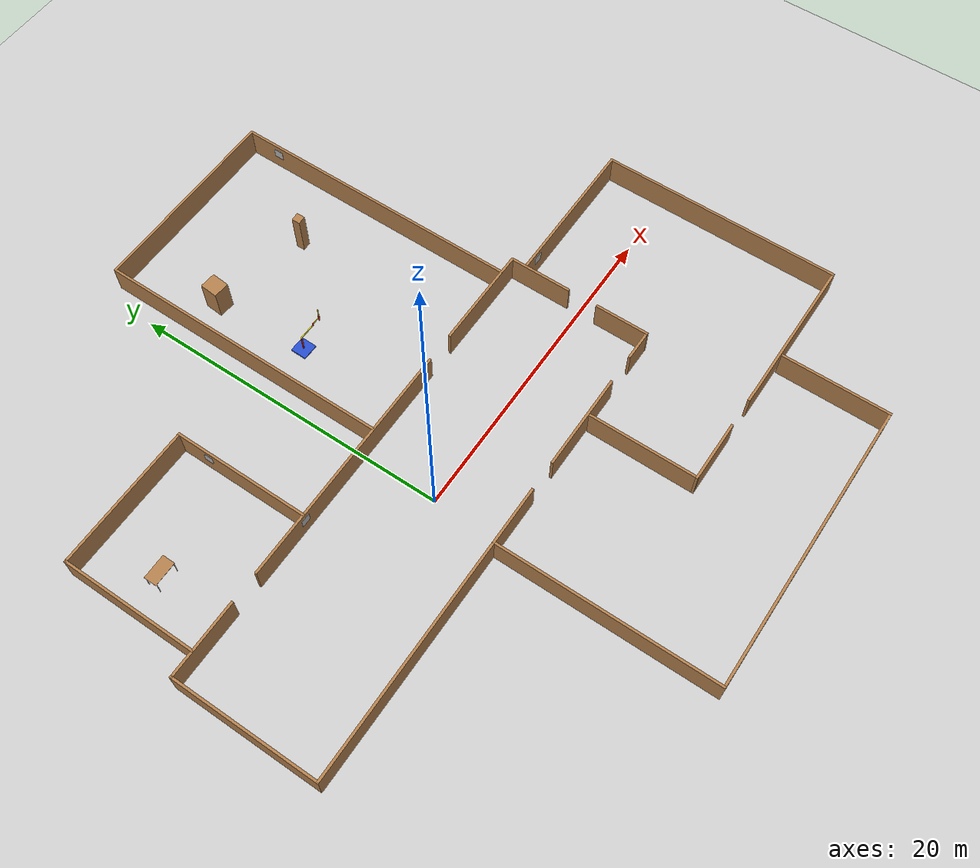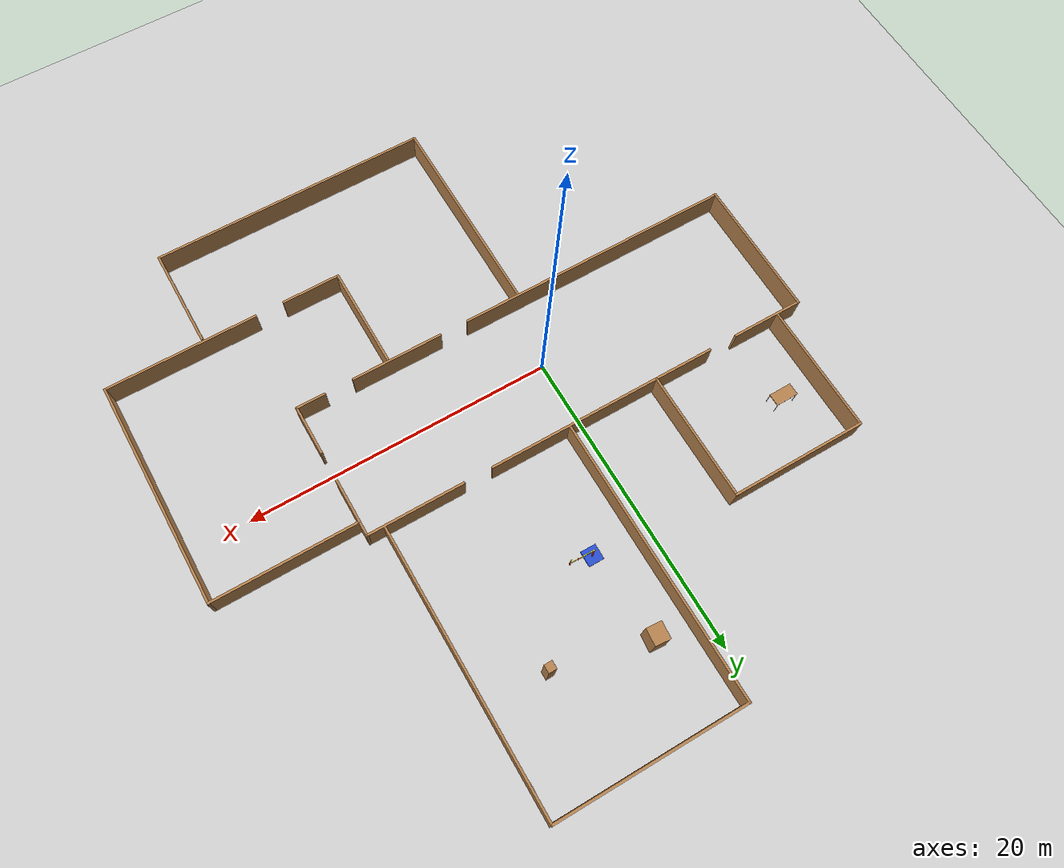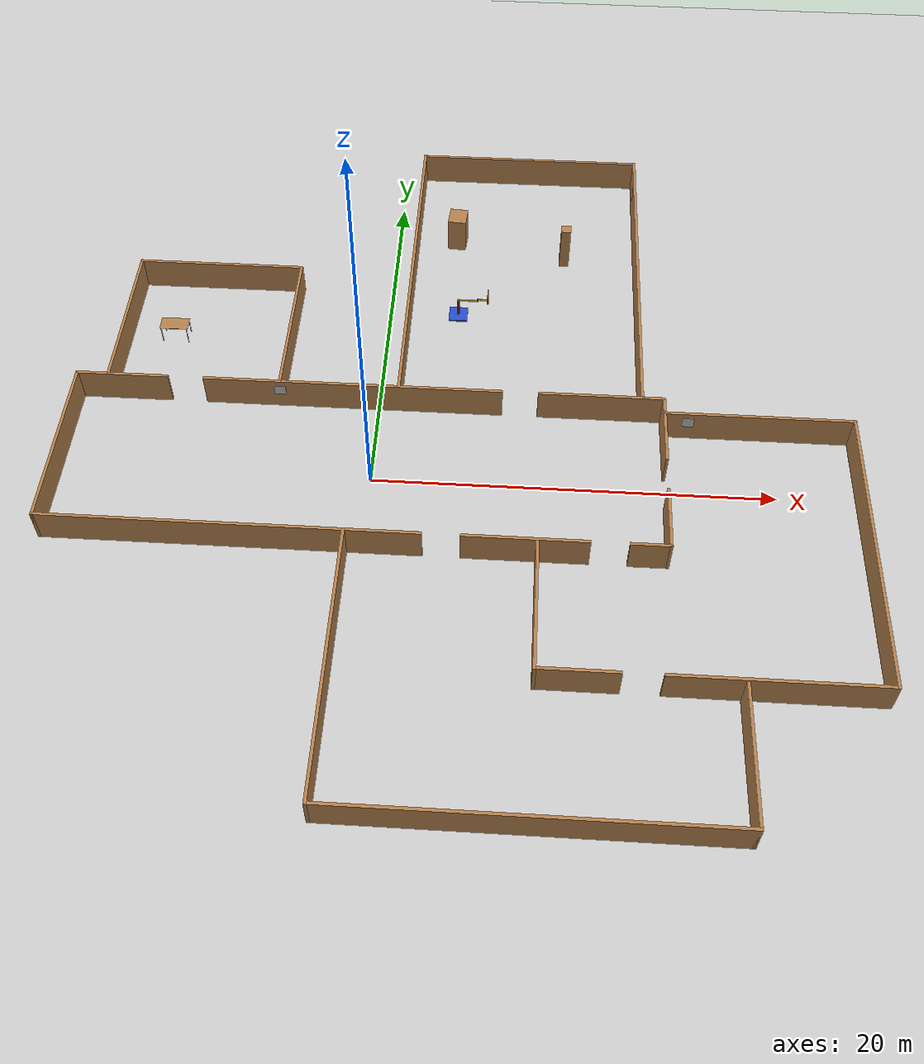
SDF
<sdf version="1.7">
 <world name="default">
  <model name="ground_plane">
   <static>1</static>
   <link name="link">
    <collision name="collision">
     <geometry><plane><normal>0 0 1</normal><size>25 25</size></plane></geometry>
     <surface><friction><ode><mu>100</mu><mu2>50</mu2></ode></friction></surface>
    </collision>
    <visual name="visual">
     <cast_shadows>0</cast_shadows>
     <geometry><plane><normal>0 0 1</normal><size>25 25</size></plane></geometry>
     <material>
      <script><uri>file://media/materials/scripts/gazebo.material</uri><name>Gazebo/Grey</name></script>
     </material>
    </visual>
   </link>
   <link name="startflag">
    <pose>0 0 0.115 0 -0 0</pose>
    <inertial>
     <mass>0.39</mass>
     <inertia><ixx>0.00058</ixx><ixy>0</ixy><ixz>0</ixz><iyy>0.00058</iyy><iyz>0</iyz><izz>0.00019</izz></inertia>
    </inertial>
    <collision name="collision"><geometry><box><size>1 1 0.01</size></box></geometry></collision>
    <visual name="visual">
     <geometry><box><size>1 1 0.01</size></box></geometry>
     <material>
      <script>
       <uri>model://apriltag/materials/scripts</uri>
       <uri>model://apriltag/materials/textures</uri>
       <name>startflag/Diffuse</name>
      </script>
     </material>
    </visual>
   </link>
  </model>
  <model name="unit_box_0_clone_0">
   <pose>9.39079 16.1994 1.29125 -1e-06 -1e-06 0.007202</pose>
   <link name="link">
    <inertial>
     <mass>1</mass>
     <inertia>
      <ixx>0.166667</ixx>
      <ixy>0</ixy>
      <ixz>0</ixz>
      <iyy>0.166667</iyy>
      <iyz>0</iyz>
      <izz>0.166667</izz>
     </inertia>
    </inertial>
    <collision name="collision"><geometry><box><size>0.52404 0.528614 2.5825</size></box></geometry></collision>
    <visual name="visual">
     <geometry><box><size>0.52404 0.528614 2.5825</size></box></geometry>
     <material>
      <script><uri>file://media/materials/scripts/gazebo.material</uri><name>Gazebo/Wood</name></script>
     </material>
    </visual>
   </link>
   <static>0</static>
  </model>
  <model name="static_apriltag_0">
   <link name="link">
    <pose>0 0 0 0 1.57 0</pose>
    <inertial>
     <mass>0.39</mass>
     <inertia><ixx>0.00058</ixx><ixy>0</ixy><ixz>0</ixz><iyy>0.00058</iyy><iyz>0</iyz><izz>0.00019</izz></inertia>
    </inertial>
    <collision name="collision"><geometry><box><size>0.6 0.6 0.01</size></box></geometry></collision>
    <visual name="visual">
     <geometry><box><size>0.6 0.6 0.01</size></box></geometry>
     <material>
      <script>
       <uri>model://apriltag/materials/scripts</uri>
       <uri>model://apriltag/materials/textures</uri>
       <name>apriltag/Diffuse0</name>
      </script>
     </material>
    </visual>
    <gravity>0</gravity>
   </link>
   <pose>-5.15533 11.0818 1.2 0 -0 0</pose>
   <static>0</static>
   <pose>1.90787 0.108649 0 0 -0 0</pose>
  </model>
  <model name="static_apriltag_1">
   <link name="link">
    <pose>0 0 0 0 1.57 0</pose>
    <inertial>
     <mass>0.39</mass>
     <inertia><ixx>0.00058</ixx><ixy>0</ixy><ixz>0</ixz><iyy>0.00058</iyy><iyz>0</iyz><izz>0.00019</izz></inertia>
    </inertial>
    <collision name="collision"><geometry><box><size>0.6 0.6 0.01</size></box></geometry></collision>
    <visual name="visual">
     <geometry><box><size>0.6 0.6 0.01</size></box></geometry>
     <material>
      <script>
       <uri>model://apriltag/materials/scripts</uri>
       <uri>model://apriltag/materials/textures</uri>
       <name>apriltag/Diffuse1</name>
      </script>
     </material>
    </visual>
    <gravity>0</gravity>
   </link>
   <pose>13.2653 20.9376 1.2 0 -0 0</pose>
   <static>0</static>
   <pose>1.36256 0.459264 0 0 -0 0</pose>
  </model>
  <model name="static_apriltag_3">
   <link name="link">
    <pose>0 0 0 -1.57 1.57 -0</pose>
    <inertial>
     <mass>0.39</mass>
     <inertia><ixx>0.00058</ixx><ixy>0</ixy><ixz>0</ixz><iyy>0.00058</iyy><iyz>0</iyz><izz>0.00019</izz></inertia>
    </inertial>
    <collision name="collision"><geometry><box><size>0.6 0.6 0.01</size></box></geometry></collision>
    <visual name="visual">
     <geometry><box><size>0.6 0.6 0.01</size></box></geometry>
     <material>
      <script>
       <uri>model://apriltag/materials/scripts</uri>
       <uri>model://apriltag/materials/textures</uri>
       <name>apriltag/Diffuse3</name>
      </script>
     </material>
    </visual>
    <gravity>0</gravity>
   </link>
   <pose>-5.07788 4.5791 1.2 0 -0 0</pose>
   <static>0</static>
   <pose>3.65849 3.02317 0 0 -0 0</pose>
  </model>
  <model name="static_apriltag_5">
   <link name="link">
    <pose>0 0 0 -1.57 1.57 -0</pose>
    <inertial>
     <mass>0.39</mass>
     <inertia><ixx>0.00058</ixx><ixy>0</ixy><ixz>0</ixz><iyy>0.00058</iyy><iyz>0</iyz><izz>0.00019</izz></inertia>
    </inertial>
    <collision name="collision"><geometry><box><size>0.6 0.6 0.01</size></box></geometry></collision>
    <visual name="visual">
     <geometry><box><size>0.6 0.6 0.01</size></box></geometry>
     <material>
      <script>
       <uri>model://apriltag/materials/scripts</uri>
       <uri>model://apriltag/materials/textures</uri>
       <name>apriltag/Diffuse5</name>
      </script>
     </material>
    </visual>
    <gravity>0</gravity>
   </link>
   <pose>15.6897 3.67103 1.2 0 -0 0</pose>
   <static>0</static>
   <pose>5.04082 3.71574 0 0 -0 0</pose>
  </model>
  <model name="simple_arm">
   <link name="arm_base">
    <inertial>
     <pose>0 0 0.00099 0 -0 0</pose>
     <inertia><ixx>1.11</ixx><ixy>0</ixy><ixz>0</ixz><iyy>100.11</iyy><iyz>0</iyz><izz>1.01</izz></inertia>
     <mass>101</mass>
    </inertial>
    <collision name="arm_base_geom">
     <pose>0 0 0.05 0 -0 0</pose>
     <geometry><box><size>1 1 0.1</size></box></geometry>
    </collision>
    <visual name="arm_base_geom_visual">
     <pose>0 0 0.05 0 -0 0</pose>
     <geometry><box><size>1 1 0.1</size></box></geometry>
     <material>
      <script><uri>file://media/materials/scripts/gazebo.material</uri><name>Gazebo/Blue</name></script>
     </material>
    </visual>
    <collision name="arm_base_geom_arm_trunk">
     <pose>0 0 0.6 0 -0 0</pose>
     <geometry><cylinder><radius>0.05</radius><length>1</length></cylinder></geometry>
    </collision>
    <visual name="arm_base_geom_arm_trunk_visual">
     <pose>0 0 0.6 0 -0 0</pose>
     <geometry><cylinder><radius>0.05</radius><length>1</length></cylinder></geometry>
     <material>
      <script><uri>file://media/materials/scripts/gazebo.material</uri><name>Gazebo/Red</name></script>
     </material>
    </visual>
   </link>
   <link name="arm_shoulder_pan">
    <pose>0 0 1.1 0 -0 0</pose>
    <inertial>
     <pose>0.045455 0 0 0 -0 0</pose>
     <inertia><ixx>0.011</ixx><ixy>0</ixy><ixz>0</ixz><iyy>0.0225</iyy><iyz>0</iyz><izz>0.0135</izz></inertia>
     <mass>1.1</mass>
    </inertial>
    <collision name="arm_shoulder_pan_geom">
     <pose>0 0 0.05 0 -0 0</pose>
     <geometry><cylinder><radius>0.05</radius><length>0.1</length></cylinder></geometry>
    </collision>
    <visual name="arm_shoulder_pan_geom_visual">
     <pose>0 0 0.05 0 -0 0</pose>
     <geometry><cylinder><radius>0.05</radius><length>0.1</length></cylinder></geometry>
     <material>
      <script><uri>file://media/materials/scripts/gazebo.material</uri><name>Gazebo/Yellow</name></script>
     </material>
    </visual>
    <collision name="arm_shoulder_pan_geom_arm_shoulder">
     <pose>0.55 0 0.05 0 -0 0</pose>
     <geometry><box><size>1 0.05 0.1</size></box></geometry>
    </collision>
    <visual name="arm_shoulder_pan_geom_arm_shoulder_visual">
     <pose>0.55 0 0.05 0 -0 0</pose>
     <geometry><box><size>1 0.05 0.1</size></box></geometry>
     <material>
      <script><uri>file://media/materials/scripts/gazebo.material</uri><name>Gazebo/Yellow</name></script>
     </material>
    </visual>
   </link>
   <link name="arm_elbow_pan">
    <pose>1.05 0 1.1 0 -0 0</pose>
    <inertial>
     <pose>0.0875 0 0.083333 0 -0 0</pose>
     <inertia>
      <ixx>0.031</ixx>
      <ixy>0</ixy>
      <ixz>0.005</ixz>
      <iyy>0.07275</iyy>
      <iyz>0</iyz>
      <izz>0.04475</izz>
     </inertia>
     <mass>1.2</mass>
    </inertial>
    <collision name="arm_elbow_pan_geom">
     <pose>0 0 0.1 0 -0 0</pose>
     <geometry><cylinder><radius>0.05</radius><length>0.2</length></cylinder></geometry>
    </collision>
    <visual name="arm_elbow_pan_geom_visual">
     <pose>0 0 0.1 0 -0 0</pose>
     <geometry><cylinder><radius>0.05</radius><length>0.2</length></cylinder></geometry>
     <material>
      <script><uri>file://media/materials/scripts/gazebo.material</uri><name>Gazebo/Red</name></script>
     </material>
    </visual>
    <collision name="arm_elbow_pan_geom_arm_elbow">
     <pose>0.3 0 0.15 0 -0 0</pose>
     <geometry><box><size>0.5 0.03 0.1</size></box></geometry>
    </collision>
    <visual name="arm_elbow_pan_geom_arm_elbow_visual">
     <pose>0.3 0 0.15 0 -0 0</pose>
     <geometry><box><size>0.5 0.03 0.1</size></box></geometry>
     <material>
      <script><uri>file://media/materials/scripts/gazebo.material</uri><name>Gazebo/Yellow</name></script>
     </material>
    </visual>
    <collision name="arm_elbow_pan_geom_arm_wrist">
     <pose>0.55 0 0.15 0 -0 0</pose>
     <geometry><cylinder><radius>0.05</radius><length>0.3</length></cylinder></geometry>
    </collision>
    <visual name="arm_elbow_pan_geom_arm_wrist_visual">
     <pose>0.55 0 0.15 0 -0 0</pose>
     <geometry><cylinder><radius>0.05</radius><length>0.3</length></cylinder></geometry>
     <material>
      <script><uri>file://media/materials/scripts/gazebo.material</uri><name>Gazebo/Red</name></script>
     </material>
    </visual>
   </link>
   <link name="arm_wrist_lift">
    <pose>1.6 0 1.05 0 -0 0</pose>
    <inertial>
     <inertia><ixx>0.01</ixx><ixy>0</ixy><ixz>0</ixz><iyy>0.01</iyy><iyz>0</iyz><izz>0.001</izz></inertia>
     <mass>0.1</mass>
    </inertial>
    <collision name="arm_wrist_lift_geom">
     <pose>0 0 0.5 0 -0 0</pose>
     <geometry><cylinder><radius>0.03</radius><length>1</length></cylinder></geometry>
    </collision>
    <visual name="arm_wrist_lift_geom_visual">
     <pose>0 0 0.5 0 -0 0</pose>
     <geometry><cylinder><radius>0.03</radius><length>1</length></cylinder></geometry>
     <material>
      <script><uri>file://media/materials/scripts/gazebo.material</uri><name>Gazebo/Yellow</name></script>
     </material>
    </visual>
   </link>
   <link name="arm_wrist_roll">
    <pose>1.6 0 1 0 -0 0</pose>
    <inertial>
     <inertia><ixx>0.01</ixx><ixy>0</ixy><ixz>0</ixz><iyy>0.01</iyy><iyz>0</iyz><izz>0.001</izz></inertia>
     <mass>0.1</mass>
    </inertial>
    <collision name="arm_wrist_roll_geom">
     <pose>0 0 0.025 0 -0 0</pose>
     <geometry><cylinder><radius>0.05</radius><length>0.05</length></cylinder></geometry>
    </collision>
    <visual name="arm_wrist_roll_geom_visual">
     <pose>0 0 0.025 0 -0 0</pose>
     <geometry><cylinder><radius>0.05</radius><length>0.05</length></cylinder></geometry>
     <material>
      <script><uri>file://media/materials/scripts/gazebo.material</uri><name>Gazebo/Red</name></script>
     </material>
    </visual>
   </link>
   <joint name="arm_shoulder_pan_joint" type="revolute">
    <parent>arm_base</parent>
    <child>arm_shoulder_pan</child>
    <axis>
     <dynamics>
      <damping>1</damping>
      <friction>0</friction>
      <spring_reference>0</spring_reference>
      <spring_stiffness>0</spring_stiffness>
     </dynamics>
     <xyz expressed_in="__model__">0 0 1</xyz>
     <limit><lower>-1e+16</lower><upper>1e+16</upper></limit>
    </axis>
   </joint>
   <joint name="arm_elbow_pan_joint" type="revolute">
    <parent>arm_shoulder_pan</parent>
    <child>arm_elbow_pan</child>
    <axis>
     <dynamics>
      <damping>1</damping>
      <friction>0</friction>
      <spring_reference>0</spring_reference>
      <spring_stiffness>0</spring_stiffness>
     </dynamics>
     <xyz expressed_in="__model__">0 0 1</xyz>
     <limit><lower>-1e+16</lower><upper>1e+16</upper></limit>
    </axis>
   </joint>
   <joint name="arm_wrist_lift_joint" type="prismatic">
    <parent>arm_elbow_pan</parent>
    <child>arm_wrist_lift</child>
    <axis>
     <dynamics>
      <damping>1</damping>
      <friction>0</friction>
      <spring_reference>0</spring_reference>
      <spring_stiffness>0</spring_stiffness>
     </dynamics>
     <limit><lower>-0.8</lower><upper>0.1</upper></limit>
     <xyz expressed_in="__model__">0 0 1</xyz>
    </axis>
   </joint>
   <joint name="arm_wrist_roll_joint" type="revolute">
    <parent>arm_wrist_lift</parent>
    <child>arm_wrist_roll</child>
    <axis>
     <dynamics>
      <damping>1</damping>
      <friction>0</friction>
      <spring_reference>0</spring_reference>
      <spring_stiffness>0</spring_stiffness>
     </dynamics>
     <limit><lower>-2.99999</lower><upper>2.99999</upper></limit>
     <xyz expressed_in="__model__">0 0 1</xyz>
    </axis>
   </joint>
   <pose>3.65987 11.7055 -0 0 -0 -0.011111</pose>
  </model>
  <model name="house4">
   <pose>4.1908 2.60197 0 0 -0 0</pose>
   <link name="Wall_0">
    <collision name="Wall_0_Collision">
     <geometry><box><size>9.15 0.15 1.8</size></box></geometry>
     <pose>0 0 0.9 0 -0 0</pose>
    </collision>
    <visual name="Wall_0_Visual">
     <pose>0 0 0.9 0 -0 0</pose>
     <geometry><box><size>9.15 0.15 1.8</size></box></geometry>
     <material>
      <script><uri>file://media/materials/scripts/gazebo.material</uri><name>Gazebo/Wood</name></script>
      <ambient>1 1 1 1</ambient>
     </material>
     <meta><layer>0</layer></meta>
    </visual>
    <pose>-19.71 -2.4279 0 0 -0 -1.5708</pose>
   </link>
   <link name="Wall_1">
    <pose>-4.71 -6.9279 0 0 -0 0</pose>
    <visual name="Wall_1_Visual_0">
     <pose>-5.83035 0 0.9 0 -0 0</pose>
     <geometry><box><size>18.4893 0.15 1.8</size></box></geometry>
     <material>
      <script><uri>file://media/materials/scripts/gazebo.material</uri><name>Gazebo/Wood</name></script>
      <ambient>1 1 1 1</ambient>
     </material>
     <meta><layer>0</layer></meta>
    </visual>
    <collision name="Wall_1_Collision_0">
     <geometry><box><size>18.4893 0.15 1.8</size></box></geometry>
     <pose>-5.83035 0 0.9 0 -0 0</pose>
    </collision>
    <visual name="Wall_1_Visual_1">
     <pose>8.25278 0 0.9 0 -0 0</pose>
     <geometry><box><size>6.07697 0.15 1.8</size></box></geometry>
     <material>
      <script><uri>file://media/materials/scripts/gazebo.material</uri><name>Gazebo/Wood</name></script>
      <ambient>1 1 1 1</ambient>
     </material>
     <meta><layer>0</layer></meta>
    </visual>
    <collision name="Wall_1_Collision_1">
     <geometry><box><size>6.07697 0.15 1.8</size></box></geometry>
     <pose>8.25278 0 0.9 0 -0 0</pose>
    </collision>
    <visual name="Wall_1_Visual_2">
     <pose>14.0831 0 0.9 0 -0 0</pose>
     <geometry><box><size>1.98374 0.15 1.8</size></box></geometry>
     <material>
      <script><uri>file://media/materials/scripts/gazebo.material</uri><name>Gazebo/Wood</name></script>
      <ambient>1 1 1 1</ambient>
     </material>
     <meta><layer>0</layer></meta>
    </visual>
    <collision name="Wall_1_Collision_2">
     <geometry><box><size>1.98374 0.15 1.8</size></box></geometry>
     <pose>14.0831 0 0.9 0 -0 0</pose>
    </collision>
   </link>
   <link name="Wall_11">
    <collision name="Wall_11_Collision">
     <geometry><box><size>18.5 0.15 1.8</size></box></geometry>
     <pose>0 0 0.9 0 -0 0</pose>
    </collision>
    <visual name="Wall_11_Visual">
     <pose>0 0 0.9 0 -0 0</pose>
     <geometry><box><size>18.5 0.15 1.8</size></box></geometry>
     <material>
      <script><uri>file://media/materials/scripts/gazebo.material</uri><name>Gazebo/Wood</name></script>
      <ambient>1 1 1 1</ambient>
     </material>
     <meta><layer>0</layer></meta>
    </visual>
    <pose>-3.167 11.2531 0 0 -0 1.5708</pose>
   </link>
   <link name="Wall_12">
    <collision name="Wall_12_Collision">
     <geometry><box><size>12.5 0.15 1.8</size></box></geometry>
     <pose>0 0 0.9 0 -0 0</pose>
    </collision>
    <visual name="Wall_12_Visual">
     <pose>0 0 0.9 0 -0 0</pose>
     <geometry><box><size>12.5 0.15 1.8</size></box></geometry>
     <material>
      <script><uri>file://media/materials/scripts/gazebo.material</uri><name>Gazebo/Wood</name></script>
      <ambient>1 1 1 1</ambient>
     </material>
     <meta><layer>0</layer></meta>
    </visual>
    <pose>3.008 20.4281 0 0 -0 0</pose>
   </link>
   <link name="Wall_13">
    <collision name="Wall_13_Collision">
     <geometry><box><size>18.5 0.15 1.8</size></box></geometry>
     <pose>0 0 0.9 0 -0 0</pose>
    </collision>
    <visual name="Wall_13_Visual">
     <pose>0 0 0.9 0 -0 0</pose>
     <geometry><box><size>18.5 0.15 1.8</size></box></geometry>
     <material>
      <script><uri>file://media/materials/scripts/gazebo.material</uri><name>Gazebo/Wood</name></script>
      <ambient>1 1 1 1</ambient>
     </material>
     <meta><layer>0</layer></meta>
    </visual>
    <pose>9.183 11.2531 0 0 -0 -1.5708</pose>
   </link>
   <link name="Wall_15">
    <collision name="Wall_15_Collision">
     <geometry><box><size>9.5 0.15 1.8</size></box></geometry>
     <pose>0 0 0.9 0 -0 0</pose>
    </collision>
    <visual name="Wall_15_Visual">
     <pose>0 0 0.9 0 -0 0</pose>
     <geometry><box><size>9.5 0.15 1.8</size></box></geometry>
     <material>
      <script><uri>file://media/materials/scripts/gazebo.material</uri><name>Gazebo/Wood</name></script>
      <ambient>1 1 1 1</ambient>
     </material>
     <meta><layer>0</layer></meta>
    </visual>
    <pose>15.035 1.1501 0 0 -0 0</pose>
   </link>
   <link name="Wall_18">
    <collision name="Wall_18_Collision">
     <geometry><box><size>15 0.15 1.8</size></box></geometry>
     <pose>0 0 0.9 0 -0 0</pose>
    </collision>
    <visual name="Wall_18_Visual">
     <pose>0 0 0.9 0 -0 0</pose>
     <geometry><box><size>15 0.15 1.8</size></box></geometry>
     <material>
      <script><uri>file://media/materials/scripts/gazebo.material</uri><name>Gazebo/Wood</name></script>
      <ambient>1 1 1 1</ambient>
     </material>
     <meta><layer>0</layer></meta>
    </visual>
    <pose>19.71 -6.2749 0 0 -0 -1.5708</pose>
   </link>
   <link name="Wall_19">
    <pose>11.91 -13.6999 0 0 -0 3.14159</pose>
    <visual name="Wall_19_Visual_0">
     <pose>-2.84178 0 0.9 0 -0 0</pose>
     <geometry><box><size>10.0664 0.15 1.8</size></box></geometry>
     <material>
      <script><uri>file://media/materials/scripts/gazebo.material</uri><name>Gazebo/Wood</name></script>
      <ambient>1 1 1 1</ambient>
     </material>
     <meta><layer>0</layer></meta>
    </visual>
    <collision name="Wall_19_Collision_0">
     <geometry><box><size>10.0664 0.15 1.8</size></box></geometry>
     <pose>-2.84178 0 0.9 0 -0 0</pose>
    </collision>
    <visual name="Wall_19_Visual_1">
     <pose>5.93323 0 0.9 0 -0 0</pose>
     <geometry><box><size>3.88355 0.15 1.8</size></box></geometry>
     <material>
      <script><uri>file://media/materials/scripts/gazebo.material</uri><name>Gazebo/Wood</name></script>
      <ambient>1 1 1 1</ambient>
     </material>
     <meta><layer>0</layer></meta>
    </visual>
    <collision name="Wall_19_Collision_1">
     <geometry><box><size>3.88355 0.15 1.8</size></box></geometry>
     <pose>5.93323 0 0.9 0 -0 0</pose>
    </collision>
   </link>
   <link name="Wall_2">
    <pose>10.29 -2.4279 0 0 -0 1.5708</pose>
    <visual name="Wall_2_Visual_0">
     <pose>-2.88083 0 0.9 0 -0 0</pose>
     <geometry><box><size>3.38835 0.15 1.8</size></box></geometry>
     <material>
      <script><uri>file://media/materials/scripts/gazebo.material</uri><name>Gazebo/Wood</name></script>
      <ambient>1 1 1 1</ambient>
     </material>
     <meta><layer>0</layer></meta>
    </visual>
    <collision name="Wall_2_Collision_0">
     <geometry><box><size>3.38835 0.15 1.8</size></box></geometry>
     <pose>-2.88083 0 0.9 0 -0 0</pose>
    </collision>
    <visual name="Wall_2_Visual_1">
     <pose>2.59417 0 0.9 0 -0 0</pose>
     <geometry><box><size>3.96165 0.15 1.8</size></box></geometry>
     <material>
      <script><uri>file://media/materials/scripts/gazebo.material</uri><name>Gazebo/Wood</name></script>
      <ambient>1 1 1 1</ambient>
     </material>
     <meta><layer>0</layer></meta>
    </visual>
    <collision name="Wall_2_Collision_1">
     <geometry><box><size>3.96165 0.15 1.8</size></box></geometry>
     <pose>2.59417 0 0.9 0 -0 0</pose>
    </collision>
   </link>
   <link name="Wall_20">
    <collision name="Wall_20_Collision">
     <geometry><box><size>6.75 0.15 1.8</size></box></geometry>
     <pose>0 0 0.9 0 -0 0</pose>
    </collision>
    <visual name="Wall_20_Visual">
     <pose>0 0 0.9 0 -0 0</pose>
     <geometry><box><size>6.75 0.15 1.8</size></box></geometry>
     <material>
      <script><uri>file://media/materials/scripts/gazebo.material</uri><name>Gazebo/Wood</name></script>
      <ambient>1 1 1 1</ambient>
     </material>
     <meta><layer>0</layer></meta>
    </visual>
    <pose>4.11 -10.3999 0 0 -0 1.5708</pose>
   </link>
   <link name="Wall_24">
    <collision name="Wall_24_Collision">
     <geometry><box><size>13.6364 0.15 1.8</size></box></geometry>
     <pose>0 0 0.9 0 -0 0</pose>
    </collision>
    <visual name="Wall_24_Visual">
     <pose>0 0 0.9 0 -0 0</pose>
     <geometry><box><size>13.6364 0.15 1.8</size></box></geometry>
     <material>
      <script><uri>file://media/materials/scripts/gazebo.material</uri><name>Gazebo/Wood</name></script>
      <ambient>1 1 1 1</ambient>
     </material>
     <meta><layer>0</layer></meta>
    </visual>
    <pose>-4.972 -13.6849 0 0 -0 -1.5708</pose>
   </link>
   <link name="Wall_25">
    <collision name="Wall_25_Collision">
     <geometry><box><size>18.412 0.15 1.8</size></box></geometry>
     <pose>0 0 0.9 0 -0 0</pose>
    </collision>
    <visual name="Wall_25_Visual">
     <pose>0 0 0.9 0 -0 0</pose>
     <geometry><box><size>18.412 0.15 1.8</size></box></geometry>
     <material>
      <script><uri>file://media/materials/scripts/gazebo.material</uri><name>Gazebo/Wood</name></script>
      <ambient>1 1 1 1</ambient>
     </material>
     <meta><layer>0</layer></meta>
    </visual>
    <pose>4.159 -20.4279 0 0 -0 0</pose>
   </link>
   <link name="Wall_26">
    <collision name="Wall_26_Collision">
     <geometry><box><size>6.672 0.15 1.8</size></box></geometry>
     <pose>0 0 0.9 0 -0 0</pose>
    </collision>
    <visual name="Wall_26_Visual">
     <pose>0 0 0.9 0 -0 0</pose>
     <geometry><box><size>6.672 0.15 1.8</size></box></geometry>
     <material>
      <script><uri>file://media/materials/scripts/gazebo.material</uri><name>Gazebo/Wood</name></script>
      <ambient>1 1 1 1</ambient>
     </material>
     <meta><layer>0</layer></meta>
    </visual>
    <pose>13.29 -17.1669 0 0 -0 1.5708</pose>
   </link>
   <link name="Wall_3">
    <pose>-4.71 2.0721 0 0 -0 3.14159</pose>
    <visual name="Wall_3_Visual_0">
     <pose>-11.8572 0 0.9 0 -0 0</pose>
     <geometry><box><size>6.43566 0.15 1.8</size></box></geometry>
     <material>
      <script><uri>file://media/materials/scripts/gazebo.material</uri><name>Gazebo/Wood</name></script>
      <ambient>1 1 1 1</ambient>
     </material>
     <meta><layer>0</layer></meta>
    </visual>
    <collision name="Wall_3_Collision_0">
     <geometry><box><size>6.43566 0.15 1.8</size></box></geometry>
     <pose>-11.8572 0 0.9 0 -0 0</pose>
    </collision>
    <visual name="Wall_3_Visual_1">
     <pose>0.825947 0 0.9 0 -0 0</pose>
     <geometry><box><size>15.3306 0.15 1.8</size></box></geometry>
     <material>
      <script><uri>file://media/materials/scripts/gazebo.material</uri><name>Gazebo/Wood</name></script>
      <ambient>1 1 1 1</ambient>
     </material>
     <meta><layer>0</layer></meta>
    </visual>
    <collision name="Wall_3_Collision_1">
     <geometry><box><size>15.3306 0.15 1.8</size></box></geometry>
     <pose>0.825947 0 0.9 0 -0 0</pose>
    </collision>
    <visual name="Wall_3_Visual_2">
     <pose>12.6831 0 0.9 0 -0 0</pose>
     <geometry><box><size>4.78376 0.15 1.8</size></box></geometry>
     <material>
      <script><uri>file://media/materials/scripts/gazebo.material</uri><name>Gazebo/Wood</name></script>
      <ambient>1 1 1 1</ambient>
     </material>
     <meta><layer>0</layer></meta>
    </visual>
    <collision name="Wall_3_Collision_2">
     <geometry><box><size>4.78376 0.15 1.8</size></box></geometry>
     <pose>12.6831 0 0.9 0 -0 0</pose>
    </collision>
   </link>
   <link name="Wall_5">
    <collision name="Wall_5_Collision">
     <geometry><box><size>8.5 0.15 1.8</size></box></geometry>
     <pose>0 0 0.9 0 -0 0</pose>
    </collision>
    <visual name="Wall_5_Visual">
     <pose>0 0 0.9 0 -0 0</pose>
     <geometry><box><size>8.5 0.15 1.8</size></box></geometry>
     <material>
      <script><uri>file://media/materials/scripts/gazebo.material</uri><name>Gazebo/Wood</name></script>
      <ambient>1 1 1 1</ambient>
     </material>
     <meta><layer>0</layer></meta>
    </visual>
    <pose>-18.109 6.2961 0 0 -0 1.5708</pose>
   </link>
   <link name="Wall_6">
    <collision name="Wall_6_Collision">
     <geometry><box><size>9 0.15 1.8</size></box></geometry>
     <pose>0 0 0.9 0 -0 0</pose>
    </collision>
    <visual name="Wall_6_Visual">
     <pose>0 0 0.9 0 -0 0</pose>
     <geometry><box><size>9 0.15 1.8</size></box></geometry>
     <material>
      <script><uri>file://media/materials/scripts/gazebo.material</uri><name>Gazebo/Wood</name></script>
      <ambient>1 1 1 1</ambient>
     </material>
     <meta><layer>0</layer></meta>
    </visual>
    <pose>-13.684 10.4711 0 0 -0 0</pose>
   </link>
   <link name="Wall_7">
    <collision name="Wall_7_Collision">
     <geometry><box><size>8.5 0.15 1.8</size></box></geometry>
     <pose>0 0 0.9 0 -0 0</pose>
    </collision>
    <visual name="Wall_7_Visual">
     <pose>0 0 0.9 0 -0 0</pose>
     <geometry><box><size>8.5 0.15 1.8</size></box></geometry>
     <material>
      <script><uri>file://media/materials/scripts/gazebo.material</uri><name>Gazebo/Wood</name></script>
      <ambient>1 1 1 1</ambient>
     </material>
     <meta><layer>0</layer></meta>
    </visual>
    <pose>-9.259 6.2961 0 0 -0 -1.5708</pose>
   </link>
   <static>1</static>
  </model>
  <model name="unit_box_clone">
   <pose>3.29082 17.5361 1.01795 -4e-06 -2e-06 -0.080827</pose>
   <link name="link">
    <inertial>
     <mass>1</mass>
     <inertia>
      <ixx>0.166667</ixx>
      <ixy>0</ixy>
      <ixz>0</ixz>
      <iyy>0.166667</iyy>
      <iyz>0</iyz>
      <izz>0.166667</izz>
     </inertia>
    </inertial>
    <collision name="collision"><geometry><box><size>1 1.11313 2.03591</size></box></geometry></collision>
    <visual name="visual">
     <geometry><box><size>1 1.11313 2.03591</size></box></geometry>
     <material>
      <script><uri>file://media/materials/scripts/gazebo.material</uri><name>Gazebo/Wood</name></script>
     </material>
    </visual>
   </link>
   <static>0</static>
  </model>
  <model name="table_clone">
   <static>0</static>
   <link name="link">
    <collision name="surface">
     <pose>0 0 1 0 -0 0</pose>
     <geometry><box><size>1.5 0.8 0.03</size></box></geometry>
     <surface><friction><ode><mu>0.6</mu><mu2>0.6</mu2></ode></friction></surface>
    </collision>
    <visual name="visual1">
     <pose>0 0 1 0 -0 0</pose>
     <geometry><box><size>1.5 0.8 0.03</size></box></geometry>
     <material>
      <script><uri>file://media/materials/scripts/gazebo.material</uri><name>Gazebo/Wood</name></script>
     </material>
    </visual>
    <collision name="front_left_leg">
     <pose>0.68 0.38 0.5 0 -0 0</pose>
     <geometry><cylinder><radius>0.02</radius><length>1</length></cylinder></geometry>
    </collision>
    <visual name="front_left_leg">
     <pose>0.68 0.38 0.5 0 -0 0</pose>
     <geometry><cylinder><radius>0.02</radius><length>1</length></cylinder></geometry>
     <material>
      <script><uri>file://media/materials/scripts/gazebo.material</uri><name>Gazebo/Grey</name></script>
     </material>
    </visual>
    <collision name="front_right_leg">
     <pose>0.68 -0.38 0.5 0 -0 0</pose>
     <geometry><cylinder><radius>0.02</radius><length>1</length></cylinder></geometry>
    </collision>
    <visual name="front_right_leg">
     <pose>0.68 -0.38 0.5 0 -0 0</pose>
     <geometry><cylinder><radius>0.02</radius><length>1</length></cylinder></geometry>
     <material>
      <script><uri>file://media/materials/scripts/gazebo.material</uri><name>Gazebo/Grey</name></script>
     </material>
    </visual>
    <collision name="back_right_leg">
     <pose>-0.68 -0.38 0.5 0 -0 0</pose>
     <geometry><cylinder><radius>0.02</radius><length>1</length></cylinder></geometry>
    </collision>
    <visual name="back_right_leg">
     <pose>-0.68 -0.38 0.5 0 -0 0</pose>
     <geometry><cylinder><radius>0.02</radius><length>1</length></cylinder></geometry>
     <material>
      <script><uri>file://media/materials/scripts/gazebo.material</uri><name>Gazebo/Grey</name></script>
     </material>
    </visual>
    <collision name="back_left_leg">
     <pose>-0.68 0.38 0.5 0 -0 0</pose>
     <geometry><cylinder><radius>0.02</radius><length>1</length></cylinder></geometry>
    </collision>
    <visual name="back_left_leg">
     <pose>-0.68 0.38 0.5 0 -0 0</pose>
     <geometry><cylinder><radius>0.02</radius><length>1</length></cylinder></geometry>
     <material>
      <script><uri>file://media/materials/scripts/gazebo.material</uri><name>Gazebo/Grey</name></script>
     </material>
    </visual>
    <inertial>
     <inertia><ixx>1</ixx><ixy>0</ixy><ixz>0</ixz><iyy>1</iyy><iyz>0</iyz><izz>1</izz></inertia>
     <mass>1</mass>
    </inertial>
   </link>
   <pose>-11.4604 9.14288 -1e-06 1e-06 -0 0.009184</pose>
  </model>
 </world>
</sdf>
